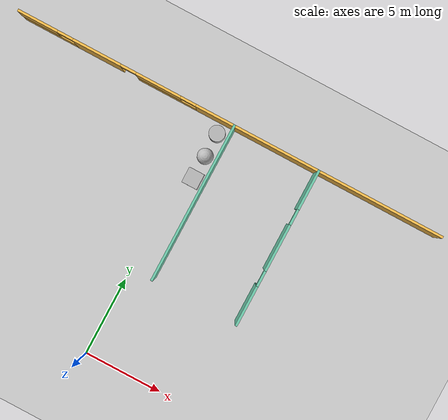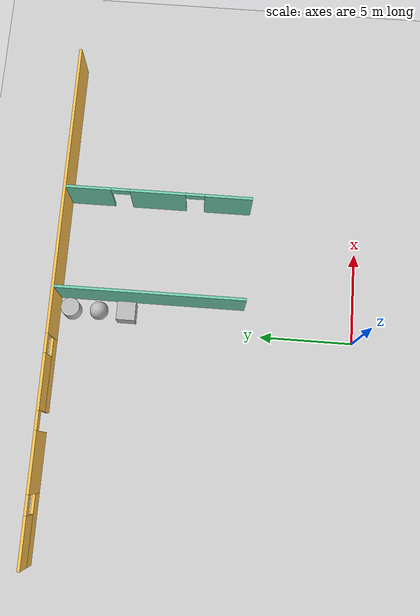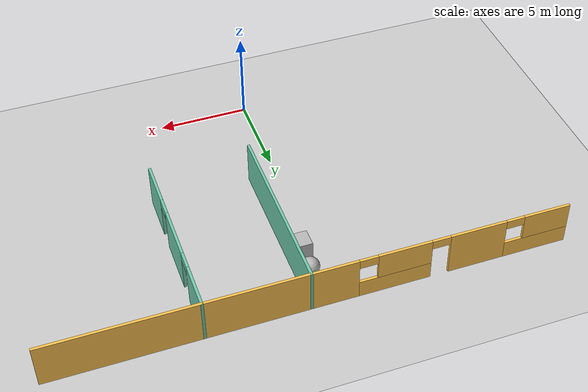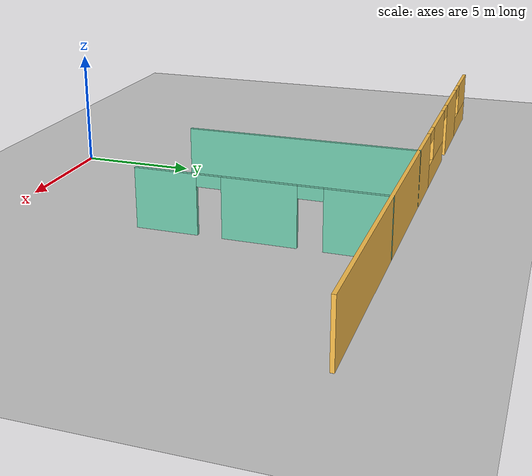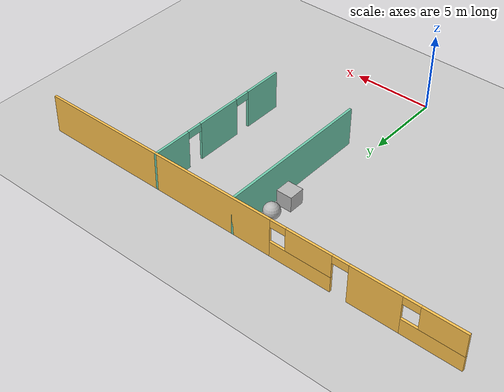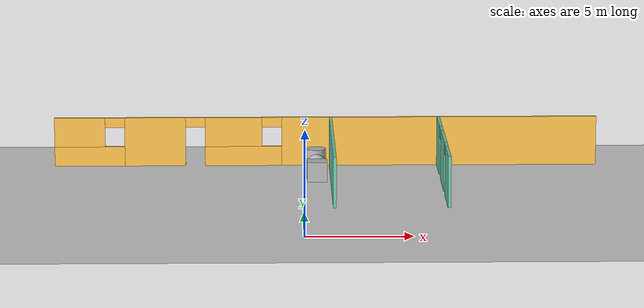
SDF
<sdf version="1.6">
 <world name="default">
  <model name="ground_plane">
   <static>1</static>
   <link name="link">
    <collision name="collision">
     <geometry><plane><normal>0 0 1</normal><size>100 100</size></plane></geometry>
     <surface><friction><ode><mu>100</mu><mu2>50</mu2></ode></friction></surface>
    </collision>
    <visual name="visual">
     <cast_shadows>0</cast_shadows>
     <geometry><plane><normal>0 0 1</normal><size>100 100</size></plane></geometry>
     <material>
      <script><uri>file://media/materials/scripts/gazebo.material</uri><name>Gazebo/Grey</name></script>
     </material>
    </visual>
   </link>
  </model>
  <model name="myWorld">
   <pose>-1.5 0 0 0 -0 0</pose>
   <link name="Wall_185">
    <collision name="Wall_185_Collision">
     <geometry><box><size>10.15 0.15 2.5</size></box></geometry>
     <pose>0 0 1.25 0 -0 0</pose>
    </collision>
    <visual name="Wall_185_Visual">
     <pose>0 0 1.25 0 -0 0</pose>
     <geometry><box><size>10.15 0.15 2.5</size></box></geometry>
     <material>
      <script><uri>file://media/materials/scripts/gazebo.material</uri><name>Gazebo/Grey</name></script>
      <ambient>0.435294 0.796078 0.67451 1</ambient>
     </material>
     <meta><layer>0</layer></meta>
    </visual>
    <pose>3 11 0 0 -0 1.5708</pose>
   </link>
   <link name="Wall_187">
    <pose>8.5 11 0 0 -0 1.5708</pose>
    <visual name="Wall_187_Visual_0">
     <pose>-3.7875 0 1.25 0 -0 0</pose>
     <geometry><box><size>2.575 0.15 2.5</size></box></geometry>
     <material>
      <script><uri>file://media/materials/scripts/gazebo.material</uri><name>Gazebo/Grey</name></script>
      <ambient>0.435294 0.796078 0.67451 1</ambient>
     </material>
     <meta><layer>0</layer></meta>
    </visual>
    <collision name="Wall_187_Collision_0">
     <geometry><box><size>2.575 0.15 2.5</size></box></geometry>
     <pose>-3.7875 0 1.25 0 -0 0</pose>
    </collision>
    <visual name="Wall_187_Visual_1">
     <pose>0 0 1.25 0 -0 0</pose>
     <geometry><box><size>3 0.15 2.5</size></box></geometry>
     <material>
      <script><uri>file://media/materials/scripts/gazebo.material</uri><name>Gazebo/Grey</name></script>
      <ambient>0.435294 0.796078 0.67451 1</ambient>
     </material>
     <meta><layer>0</layer></meta>
    </visual>
    <collision name="Wall_187_Collision_1">
     <geometry><box><size>3 0.15 2.5</size></box></geometry>
     <pose>0 0 1.25 0 -0 0</pose>
    </collision>
    <visual name="Wall_187_Visual_2">
     <pose>3.7875 0 1.25 0 -0 0</pose>
     <geometry><box><size>2.575 0.15 2.5</size></box></geometry>
     <material>
      <script><uri>file://media/materials/scripts/gazebo.material</uri><name>Gazebo/Grey</name></script>
      <ambient>0.435294 0.796078 0.67451 1</ambient>
     </material>
     <meta><layer>0</layer></meta>
    </visual>
    <collision name="Wall_187_Collision_2">
     <geometry><box><size>2.575 0.15 2.5</size></box></geometry>
     <pose>3.7875 0 1.25 0 -0 0</pose>
    </collision>
    <visual name="Wall_187_Visual_3">
     <pose>-2 0 2.25 0 -0 0</pose>
     <geometry><box><size>1 0.15 0.5</size></box></geometry>
     <material>
      <script><uri>file://media/materials/scripts/gazebo.material</uri><name>Gazebo/Grey</name></script>
      <ambient>0.435294 0.796078 0.67451 1</ambient>
     </material>
     <meta><layer>0</layer></meta>
    </visual>
    <collision name="Wall_187_Collision_3">
     <geometry><box><size>1 0.15 0.5</size></box></geometry>
     <pose>-2 0 2.25 0 -0 0</pose>
    </collision>
    <visual name="Wall_187_Visual_4">
     <pose>2 0 2.25 0 -0 0</pose>
     <geometry><box><size>1 0.15 0.5</size></box></geometry>
     <material>
      <script><uri>file://media/materials/scripts/gazebo.material</uri><name>Gazebo/Grey</name></script>
      <ambient>0.435294 0.796078 0.67451 1</ambient>
     </material>
     <meta><layer>0</layer></meta>
    </visual>
    <collision name="Wall_187_Collision_4">
     <geometry><box><size>1 0.15 0.5</size></box></geometry>
     <pose>2 0 2.25 0 -0 0</pose>
    </collision>
   </link>
   <link name="Wall_4">
    <pose>2.75 16 0 0 -0 3.14159</pose>
    <visual name="Wall_4_Visual_0">
     <pose>-5.7875 0 1.25 0 -0 0</pose>
     <geometry><box><size>16.075 0.15 2.5</size></box></geometry>
     <material>
      <script><uri>file://media/materials/scripts/gazebo.material</uri><name>Gazebo/Grey</name></script>
      <ambient>1 0.764706 0.305882 1</ambient>
     </material>
     <meta><layer>0</layer></meta>
    </visual>
    <collision name="Wall_4_Collision_0">
     <geometry><box><size>16.075 0.15 2.5</size></box></geometry>
     <pose>-5.7875 0 1.25 0 -0 0</pose>
    </collision>
    <visual name="Wall_4_Visual_1">
     <pose>8.69912 0 1.25 0 -0 0</pose>
     <geometry><box><size>3.10175 0.15 2.5</size></box></geometry>
     <material>
      <script><uri>file://media/materials/scripts/gazebo.material</uri><name>Gazebo/Grey</name></script>
      <ambient>1 0.764706 0.305882 1</ambient>
     </material>
     <meta><layer>0</layer></meta>
    </visual>
    <collision name="Wall_4_Collision_1">
     <geometry><box><size>3.10175 0.15 2.5</size></box></geometry>
     <pose>8.69912 0 1.25 0 -0 0</pose>
    </collision>
    <visual name="Wall_4_Visual_2">
     <pose>4.19912 0 0.5 0 -0 0</pose>
     <geometry><box><size>3.89825 0.15 1</size></box></geometry>
     <material>
      <script><uri>file://media/materials/scripts/gazebo.material</uri><name>Gazebo/Grey</name></script>
      <ambient>1 0.764706 0.305882 1</ambient>
     </material>
     <meta><layer>0</layer></meta>
    </visual>
    <collision name="Wall_4_Collision_2">
     <geometry><box><size>3.89825 0.15 1</size></box></geometry>
     <pose>4.19912 0 0.5 0 -0 0</pose>
    </collision>
    <visual name="Wall_4_Visual_3">
     <pose>12.0375 0 0.5 0 -0 0</pose>
     <geometry><box><size>3.575 0.15 1</size></box></geometry>
     <material>
      <script><uri>file://media/materials/scripts/gazebo.material</uri><name>Gazebo/Grey</name></script>
      <ambient>1 0.764706 0.305882 1</ambient>
     </material>
     <meta><layer>0</layer></meta>
    </visual>
    <collision name="Wall_4_Collision_3">
     <geometry><box><size>3.575 0.15 1</size></box></geometry>
     <pose>12.0375 0 0.5 0 -0 0</pose>
    </collision>
    <visual name="Wall_4_Visual_4">
     <pose>4.69912 0 1.75 0 -0 0</pose>
     <geometry><box><size>2.89825 0.15 1.5</size></box></geometry>
     <material>
      <script><uri>file://media/materials/scripts/gazebo.material</uri><name>Gazebo/Grey</name></script>
      <ambient>1 0.764706 0.305882 1</ambient>
     </material>
     <meta><layer>0</layer></meta>
    </visual>
    <collision name="Wall_4_Collision_4">
     <geometry><box><size>2.89825 0.15 1.5</size></box></geometry>
     <pose>4.69912 0 1.75 0 -0 0</pose>
    </collision>
    <visual name="Wall_4_Visual_5">
     <pose>4.69912 0 1.75 0 -0 0</pose>
     <geometry><box><size>2.89825 0.15 1.5</size></box></geometry>
     <material>
      <script><uri>file://media/materials/scripts/gazebo.material</uri><name>Gazebo/Grey</name></script>
      <ambient>1 0.764706 0.305882 1</ambient>
     </material>
     <meta><layer>0</layer></meta>
    </visual>
    <collision name="Wall_4_Collision_5">
     <geometry><box><size>2.89825 0.15 1.5</size></box></geometry>
     <pose>4.69912 0 1.75 0 -0 0</pose>
    </collision>
    <visual name="Wall_4_Visual_6">
     <pose>12.5375 0 1.75 0 -0 0</pose>
     <geometry><box><size>2.575 0.15 1.5</size></box></geometry>
     <material>
      <script><uri>file://media/materials/scripts/gazebo.material</uri><name>Gazebo/Grey</name></script>
      <ambient>1 0.764706 0.305882 1</ambient>
     </material>
     <meta><layer>0</layer></meta>
    </visual>
    <collision name="Wall_4_Collision_6">
     <geometry><box><size>2.575 0.15 1.5</size></box></geometry>
     <pose>12.5375 0 1.75 0 -0 0</pose>
    </collision>
    <visual name="Wall_4_Visual_7">
     <pose>2.75 0 2.25 0 -0 0</pose>
     <geometry><box><size>1 0.15 0.5</size></box></geometry>
     <material>
      <script><uri>file://media/materials/scripts/gazebo.material</uri><name>Gazebo/Grey</name></script>
      <ambient>1 0.764706 0.305882 1</ambient>
     </material>
     <meta><layer>0</layer></meta>
    </visual>
    <collision name="Wall_4_Collision_7">
     <geometry><box><size>1 0.15 0.5</size></box></geometry>
     <pose>2.75 0 2.25 0 -0 0</pose>
    </collision>
    <visual name="Wall_4_Visual_8">
     <pose>10.75 0 2.25 0 -0 0</pose>
     <geometry><box><size>1 0.15 0.5</size></box></geometry>
     <material>
      <script><uri>file://media/materials/scripts/gazebo.material</uri><name>Gazebo/Grey</name></script>
      <ambient>1 0.764706 0.305882 1</ambient>
     </material>
     <meta><layer>0</layer></meta>
    </visual>
    <collision name="Wall_4_Collision_8">
     <geometry><box><size>1 0.15 0.5</size></box></geometry>
     <pose>10.75 0 2.25 0 -0 0</pose>
    </collision>
    <visual name="Wall_4_Visual_9">
     <pose>6.64825 0 2.25 0 -0 0</pose>
     <geometry><box><size>1 0.15 0.5</size></box></geometry>
     <material>
      <script><uri>file://media/materials/scripts/gazebo.material</uri><name>Gazebo/Grey</name></script>
      <ambient>1 0.764706 0.305882 1</ambient>
     </material>
     <meta><layer>0</layer></meta>
    </visual>
    <collision name="Wall_4_Collision_9">
     <geometry><box><size>1 0.15 0.5</size></box></geometry>
     <pose>6.64825 0 2.25 0 -0 0</pose>
    </collision>
    <visual name="Wall_4_Visual_10">
     <pose>6.64825 0 2.25 0 -0 0</pose>
     <geometry><box><size>1 0.15 0.5</size></box></geometry>
     <material>
      <script><uri>file://media/materials/scripts/gazebo.material</uri><name>Gazebo/Grey</name></script>
      <ambient>1 0.764706 0.305882 1</ambient>
     </material>
     <meta><layer>0</layer></meta>
    </visual>
    <collision name="Wall_4_Collision_10">
     <geometry><box><size>1 0.15 0.5</size></box></geometry>
     <pose>6.64825 0 2.25 0 -0 0</pose>
    </collision>
   </link>
   <static>1</static>
  </model>
  <model name="textured_shapes">
   <pose>0.749996 13.75 0.509992 -3e-06 2e-06 -1e-06</pose>
   <link name="box">
    <pose>0 -1.5 0 0 -0 0</pose>
    <collision name="collision"><geometry><box><size>1 1 1</size></box></geometry></collision>
    <visual name="visual">
     <geometry><box><size>1 1 1</size></box></geometry>
     <material>
      <script>
       <uri>model://textured_shapes/materials/scripts</uri>
       <uri>model://textured_shapes/materials/textures</uri>
       <name>TexturedShape/Squares</name>
      </script>
     </material>
    </visual>
    <inertial>
     <inertia><ixx>1</ixx><ixy>0</ixy><ixz>0</ixz><iyy>1</iyy><iyz>0</iyz><izz>1</izz></inertia>
     <mass>1</mass>
    </inertial>
   </link>
   <link name="sphere">
    <collision name="collision"><geometry><sphere><radius>0.5</radius></sphere></geometry></collision>
    <visual name="visual">
     <geometry><sphere><radius>0.5</radius></sphere></geometry>
     <material>
      <script>
       <uri>model://textured_shapes/materials/scripts</uri>
       <uri>model://textured_shapes/materials/textures</uri>
       <name>TexturedShape/Squares</name>
      </script>
     </material>
    </visual>
    <inertial>
     <inertia><ixx>1</ixx><ixy>0</ixy><ixz>0</ixz><iyy>1</iyy><iyz>0</iyz><izz>1</izz></inertia>
     <mass>1</mass>
    </inertial>
   </link>
   <link name="cylinder">
    <pose>0 1.5 0 0 -0 0</pose>
    <collision name="collision">
     <geometry><cylinder><radius>0.5</radius><length>1</length></cylinder></geometry>
    </collision>
    <visual name="visual">
     <geometry><cylinder><radius>0.5</radius><length>1</length></cylinder></geometry>
     <material>
      <script>
       <uri>model://textured_shapes/materials/scripts</uri>
       <uri>model://textured_shapes/materials/textures</uri>
       <name>TexturedShape/Squares</name>
      </script>
     </material>
    </visual>
    <inertial>
     <inertia><ixx>1</ixx><ixy>0</ixy><ixz>0</ixz><iyy>1</iyy><iyz>0</iyz><izz>1</izz></inertia>
     <mass>1</mass>
    </inertial>
   </link>
  </model>
 </world>
</sdf>
